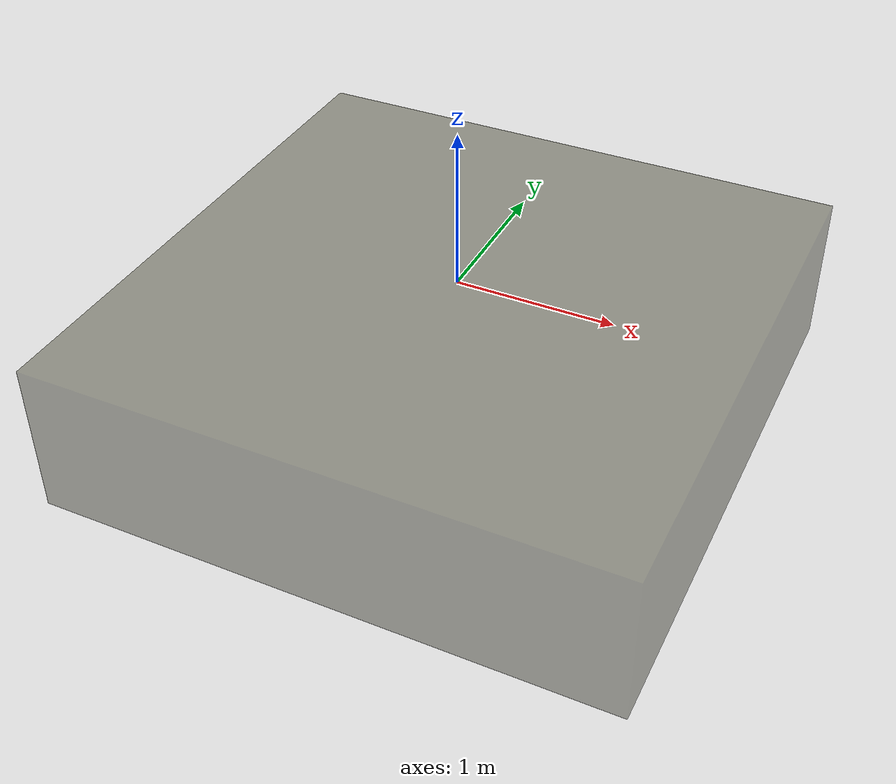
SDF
<?xml version="1.0" ?>
<sdf version="1.5">
  <model name="box">
    <link name="base">
      <inertial>
        <mass>18.70</mass>
        <inertia>
          <ixx>0.79</ixx>
          <ixy>0</ixy>
          <ixz>0</ixz>
          <iyy>0.53</iyy>
          <iyz>0</iyz>
          <izz>1.2</izz>
        </inertia>
      </inertial>
      <visual name="visual">
        <pose>0 0 -0.5 0 0 0</pose>
        <geometry>
          <box>
            <size>3.6576 3.6576 1</size>
          </box>
        </geometry>
        <material>
          <ambient>0.5 0.25 0 0.5</ambient>
          <diffuse>0.1 0.1 0 0.4</diffuse>
        </material>
      </visual>
      <collision name="collision">
        <pose>0 0 -0.5 0 0 0</pose>
        <geometry>
          <box>
            <size>3.6576 3.6576 1</size>
          </box>
        </geometry>
        <drake:proximity_properties>
          <drake:rigid_hydroelastic/>
        </drake:proximity_properties>
      </collision>
    </link>
  </model>
</sdf>
